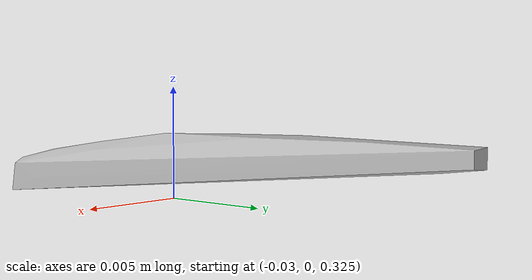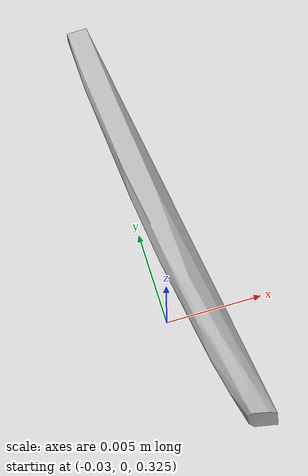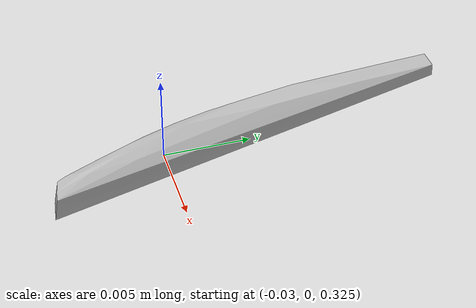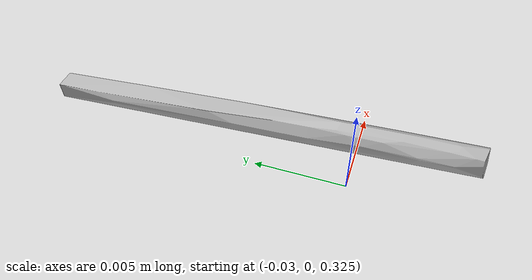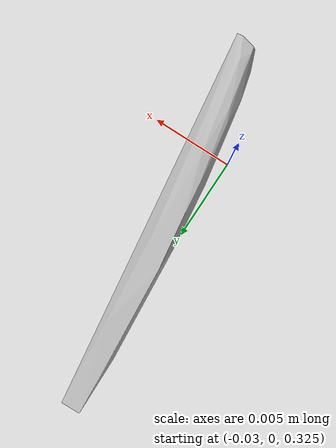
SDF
<?xml version="1.0"?>
<sdf version="1.7">
  <model name="vascular_partexport042">
    <link name="vascular_partexport042_body">
      <visual name="vascular_partexport042_visual">
        <geometry>
          <mesh>
            <uri>vascular_partexport042.obj</uri>
          </mesh>
        </geometry>
      </visual>
      <collision name="vascular_partexport042_collision">
        <geometry>
          <mesh>
            <uri>vascular_partexport042.obj</uri>
          </mesh>
        </geometry>
      </collision>
    </link>
    <frame name="vascular_partexport042_center">
      <pose relative_to="vascular_partexport042_body">0 0 0 0 0 0</pose>
    </frame>
  </model>
</sdf>
